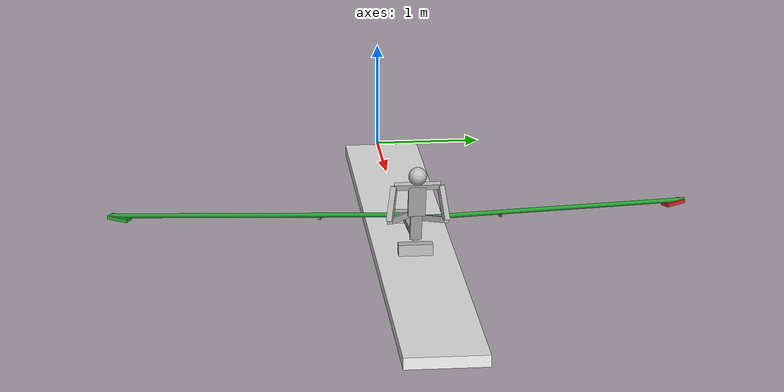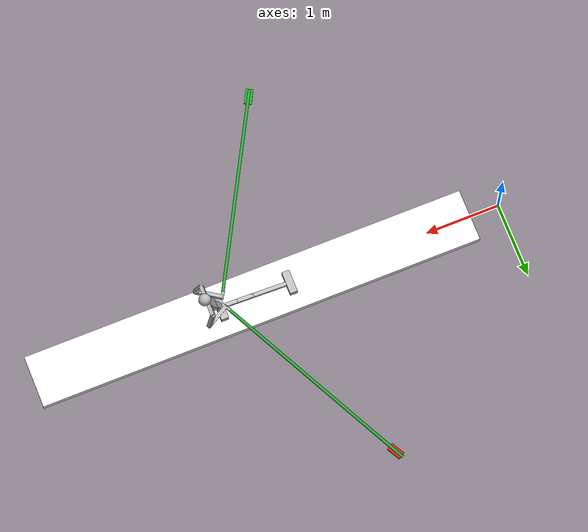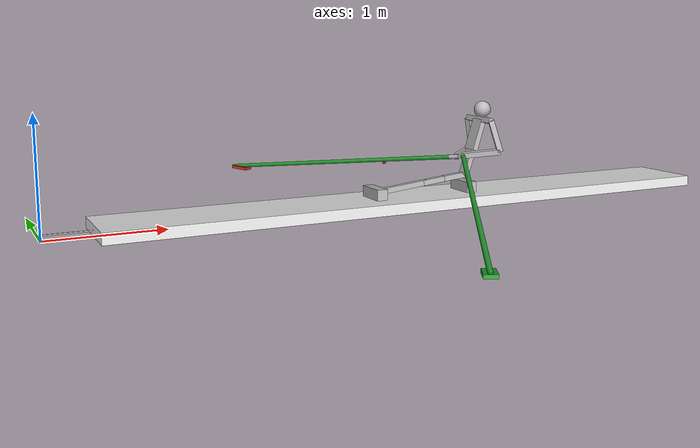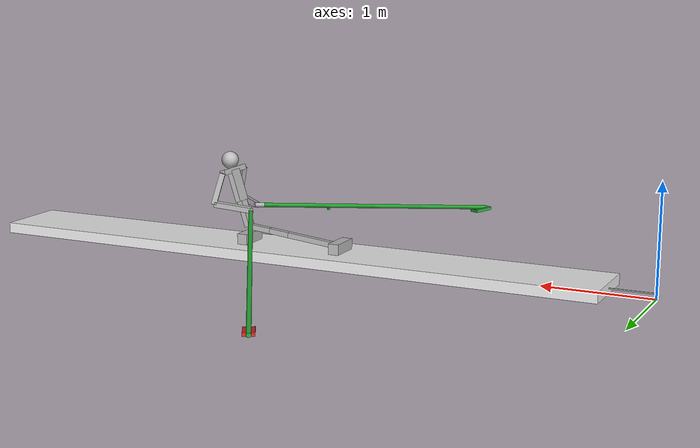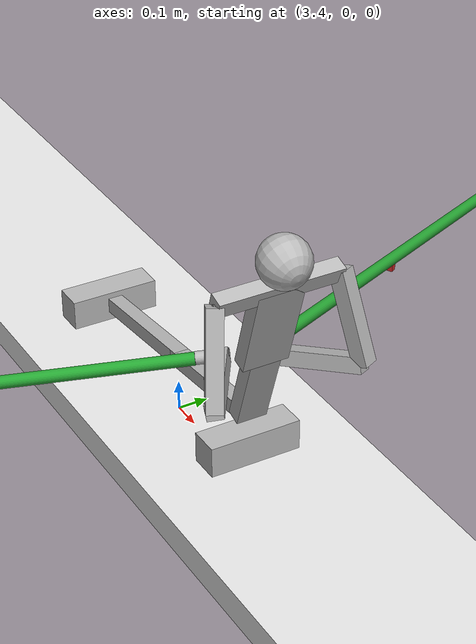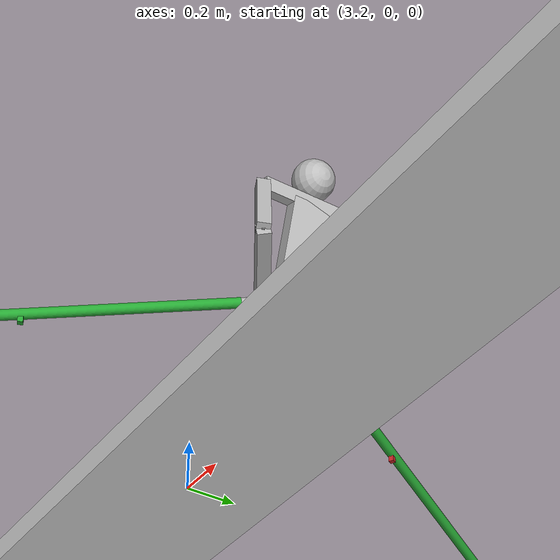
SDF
<sdf version='1.6'>
  <model name='myboat'>
    <link name='l1'>
      <pose frame=''>0 0 0 0 -0 0</pose>
      <inertial>
        <pose frame=''>0 0 0.025 0 -0 0</pose>
        <mass>0.1</mass>
        <inertia>
          <ixx>3.3e-05</ixx>
          <ixy>0</ixy>
          <ixz>0</ixz>
          <iyy>3.3e-05</iyy>
          <iyz>0</iyz>
          <izz>1.67e-07</izz>
        </inertia>
      </inertial>
      <visual name='l1_visual'>
        <pose frame=''>0 0 0.025 0 -0 0</pose>
        <geometry>
          <box>
            <size>0.01 0.01 0.05</size>
          </box>
        </geometry>
      </visual>
    </link>
    <joint name='the_course' type='prismatic'>
      <child>l1</child>
      <parent>world</parent>
      <axis>
        <xyz>1 0 0</xyz>
        <limit>
          <lower>0</lower>
          <upper>100</upper>
          <effort>101</effort>
          <velocity>0.5</velocity>
        </limit>
        <dynamics>
          <damping>0.005</damping>
          <friction>0</friction>
          <spring_reference>0</spring_reference>
          <spring_stiffness>0</spring_stiffness>
        </dynamics>
        <use_parent_model_frame>1</use_parent_model_frame>
      </axis>
    </joint>
    <link name='l2'>
      <pose frame=''>0 0 0.05 3.14159 1.57079 3.14159</pose>
      <inertial>
        <pose frame=''>0 0 0.2 0 -0 0</pose>
        <mass>0.1</mass>
        <inertia>
          <ixx>0.000133</ixx>
          <ixy>0</ixy>
          <ixz>0</ixz>
          <iyy>133</iyy>
          <iyz>0</iyz>
          <izz>1.67e-07</izz>
        </inertia>
      </inertial>
      <visual name='l2_visual'>
        <pose frame=''>0 0 0.2 0 -0 0</pose>
        <geometry>
          <box>
            <size>0.01 0.01 0.4</size>
          </box>
        </geometry>
      </visual>
    </link>
    <joint name='rev1' type='revolute'>
      <child>l2</child>
      <parent>l1</parent>
      <axis>
        <xyz>0 1 0</xyz>
        <limit>
          <lower>-1</lower>
          <upper>1</upper>
          <effort>101</effort>
          <velocity>1</velocity>
        </limit>
        <dynamics>
          <damping>0.005</damping>
          <friction>0</friction>
          <spring_reference>0</spring_reference>
          <spring_stiffness>0</spring_stiffness>
        </dynamics>
        <use_parent_model_frame>1</use_parent_model_frame>
      </axis>
    </joint>
    <link name='skiff'>
      <pose frame=''>0.4 0 0.05 0 0 3.14159</pose>
      <inertial>
        <pose frame=''>-2.99941 0 0.000118 0 -0 0</pose>
        <mass>85.1</mass>
        <inertia>
          <ixx>3.2018</ixx>
          <ixy>0</ixy>
          <ixz>-0.00499412</ixz>
          <iyy>225.026</iyy>
          <iyz>0</iyz>
          <izz>228.026</izz>
        </inertia>
      </inertial>
      <collision name='skiff_collision'>
        <pose frame=''>-3 0 0 0 -0 0</pose>
        <geometry>
          <box>
            <size>6 0.7 0.1</size>
          </box>
        </geometry>
        <surface>
          <friction>
            <ode>
              <slip1>0.05</slip1>
              <slip2>0.12</slip2>
              <mu>0.01</mu>
              <mu2>0.01</mu2>
            </ode>
          </friction>
          <contact>
            <ode/>
          </contact>
        </surface>
      </collision>
      <collision name='skiff_fixed_joint_lump__footplate_collision_1'>
        <pose frame=''>-2.5 0 0.1 0 -0 0</pose>
        <geometry>
          <box>
            <size>0.1 0.3 0.1</size>
          </box>
        </geometry>
      </collision>
      <visual name='skiff_visual'>
        <pose frame=''>-3 0 0 0 -0 0</pose>
        <geometry>
          <box>
            <size>6 0.7 0.1</size>
          </box>
        </geometry>
        <material>
          <script>
            <name>Gazebo/White</name>
            <uri>file://media/materials/scripts/gazebo.material</uri>
          </script>
        </material>
      </visual>
      <visual name='skiff_fixed_joint_lump__footplate_visual_1'>
        <pose frame=''>-2.5 0 0.1 0 -0 0</pose>
        <geometry>
          <box>
            <size>0.1 0.3 0.1</size>
          </box>
        </geometry>
      </visual>
      <gravity>1</gravity>
      <velocity_decay/>
    </link>
    <joint name='rev2' type='revolute'>
      <child>skiff</child>
      <parent>l2</parent>
      <axis>
        <xyz>-0 -1 0</xyz>
        <limit>
          <lower>-1</lower>
          <upper>1</upper>
          <effort>101</effort>
          <velocity>1</velocity>
        </limit>
        <dynamics>
          <damping>0.005</damping>
          <friction>0</friction>
          <spring_reference>0</spring_reference>
          <spring_stiffness>0</spring_stiffness>
        </dynamics>
        <use_parent_model_frame>1</use_parent_model_frame>
      </axis>
    </joint>
    <link name='port_rowlock_l'>
      <pose frame=''>3.4 0.8 0.3 0 0 -2.64769</pose>
      <inertial>
        <pose frame=''>0 0 0 0 -0 0</pose>
        <mass>0.1</mass>
        <inertia>
          <ixx>1.7e-05</ixx>
          <ixy>0</ixy>
          <ixz>0</ixz>
          <iyy>1.7e-05</iyy>
          <iyz>0</iyz>
          <izz>7e-06</izz>
        </inertia>
      </inertial>
      <collision name='port_rowlock_l_collision'>
        <pose frame=''>0 0 0 0 -0 0</pose>
        <geometry>
          <box>
            <size>0.02 0.02 0.04</size>
          </box>
        </geometry>
        <surface>
          <contact>
            <ode/>
          </contact>
          <friction>
            <ode>
              <mu>0.01</mu>
              <mu2>0.01</mu2>
            </ode>
          </friction>
        </surface>
      </collision>
      <visual name='port_rowlock_l_visual'>
        <pose frame=''>0 0 0 0 -0 0</pose>
        <geometry>
          <box>
            <size>0.02 0.02 0.04</size>
          </box>
        </geometry>
        <material>
          <script>
            <name>Gazebo/Red</name>
            <uri>file://media/materials/scripts/gazebo.material</uri>
          </script>
        </material>
      </visual>
      <gravity>1</gravity>
      <velocity_decay/>
    </link>
    <joint name='port_rowlock' type='revolute'>
      <child>port_rowlock_l</child>
      <parent>skiff</parent>
      <axis>
        <xyz>-0 0 1</xyz>
        <limit>
          <lower>-2</lower>
          <upper>0.4</upper>
          <effort>101</effort>
          <velocity>1</velocity>
        </limit>
        <dynamics>
          <damping>0.005</damping>
          <friction>0</friction>
          <spring_reference>0</spring_reference>
          <spring_stiffness>0</spring_stiffness>
        </dynamics>
        <use_parent_model_frame>1</use_parent_model_frame>
      </axis>
      <physics>
        <provide_feedback>1</provide_feedback>
        <ode>
          <provide_feedback>1</provide_feedback>
          <limit>
            <cfm>0</cfm>
            <erp>0.2</erp>
          </limit>
        </ode>
      </physics>
    </joint>
    <link name='port_oar_l'>
      <pose frame=''>3.4 0.8 0.32 -3.14159 1.4549 -1.0769</pose>
      <inertial>
        <pose frame=''>0 0 0.534545 0 -0 0</pose>
        <mass>1.1</mass>
        <inertia>
          <ixx>0.787202</ixx>
          <ixy>0</ixy>
          <ixz>0</ixz>
          <iyy>0.787202</iyy>
          <iyz>0</iyz>
          <izz>0.000200167</izz>
        </inertia>
      </inertial>
      <collision name='port_oar_l_collision'>
        <pose frame=''>0 0 0.665 0 -0 0</pose>
        <geometry>
          <cylinder>
            <length>2.27</length>
            <radius>0.02</radius>
          </cylinder>
        </geometry>
        <surface>
          <contact>
            <ode/>
          </contact>
          <friction>
            <ode>
              <mu>0.01</mu>
              <mu2>0.01</mu2>
            </ode>
          </friction>
        </surface>
      </collision>
      <visual name='port_oar_l_visual'>
        <pose frame=''>0 0 0.665 0 -0 0</pose>
        <geometry>
          <cylinder>
            <length>2.87</length>
            <radius>0.02</radius>
          </cylinder>
        </geometry>
        <material>
          <script>
            <name>Gazebo/Green</name>
            <uri>file://media/materials/scripts/gazebo.material</uri>
          </script>
        </material>
      </visual>
      <visual name='port_oar_l_fixed_joint_lump__Rdummy_link_1_visual_1'>
        <pose frame=''>0 0 -0.77 0 0 -1.5708</pose>
        <geometry>
          <box>
            <size>0.01 0.01 0.01</size>
          </box>
        </geometry>
      </visual>
      <gravity>1</gravity>
      <velocity_decay/>
    </link>
    <joint name='port_oar' type='revolute'>
      <child>port_oar_l</child>
      <parent>port_rowlock_l</parent>
      <axis>
        <xyz>-0.880491 -0.474063 -0</xyz>
        <limit>
          <lower>-0.1</lower>
          <upper>0.4</upper>
          <effort>101</effort>
          <velocity>1</velocity>
        </limit>
        <dynamics>
          <damping>0.005</damping>
          <friction>0</friction>
          <spring_reference>0</spring_reference>
          <spring_stiffness>0</spring_stiffness>
        </dynamics>
        <use_parent_model_frame>1</use_parent_model_frame>
      </axis>
      <physics>
        <provide_feedback>1</provide_feedback>
        <ode>
          <provide_feedback>1</provide_feedback>
          <limit>
            <cfm>0</cfm>
            <erp>0.2</erp>
          </limit>
        </ode>
      </physics>
    </joint>
    <link name='port_blade_l'>
      <pose frame=''>2.45823 2.54917 0.088719 -3.14159 1.4549 -1.0769</pose>
      <inertial>
        <pose frame=''>0.02 0 -0.02 0 1.4 0</pose>
        <mass>1</mass>
        <inertia>
          <ixx>0.0009</ixx>
          <ixy>0</ixy>
          <ixz>0</ixz>
          <iyy>0.0034</iyy>
          <iyz>0</iyz>
          <izz>0.004</izz>
        </inertia>
      </inertial>
      <collision name='port_blade_l_collision'>
        <pose frame=''>0.02 0 -0.02 0 1.4 0</pose>
        <geometry>
          <box>
            <size>0.2 0.1 0.03</size>
          </box>
        </geometry>
        <surface>
          <contact>
            <ode/>
          </contact>
          <friction>
            <ode>
              <mu>10</mu>
              <mu2>10</mu2>
            </ode>
          </friction>
        </surface>
      </collision>
      <visual name='port_blade_l_visual'>
        <pose frame=''>0.02 0 -0.02 0 1.4 0</pose>
        <geometry>
          <box>
            <size>0.2 0.1 0.03</size>
          </box>
        </geometry>
        <material>
          <script>
            <name>Gazebo/Red</name>
            <uri>file://media/materials/scripts/gazebo.material</uri>
          </script>
        </material>
      </visual>
      <gravity>1</gravity>
      <velocity_decay/>
    </link>
    <joint name='port_blade' type='revolute'>
      <child>port_blade_l</child>
      <parent>port_oar_l</parent>
      <axis>
        <xyz>-0.880491 -0.474063 -0</xyz>
        <limit>
          <lower>-0.4</lower>
          <upper>0.4</upper>
          <effort>101</effort>
          <velocity>1</velocity>
        </limit>
        <dynamics>
          <damping>0.005</damping>
          <friction>0</friction>
          <spring_reference>0</spring_reference>
          <spring_stiffness>0</spring_stiffness>
        </dynamics>
        <use_parent_model_frame>1</use_parent_model_frame>
      </axis>
      <physics>
        <provide_feedback>1</provide_feedback>
        <ode>
          <provide_feedback>1</provide_feedback>
          <limit>
            <cfm>0</cfm>
            <erp>0.2</erp>
          </limit>
        </ode>
      </physics>
    </joint>
    <link name='lowerleg'>
      <pose frame=''>2.9 0 0.15 0 0.1071 -3.14159</pose>
      <inertial>
        <pose frame=''>-0.265 0 0 0 -0 0</pose>
        <mass>1</mass>
        <inertia>
          <ixx>0.00041</ixx>
          <ixy>0</ixy>
          <ixz>0</ixz>
          <iyy>0.021</iyy>
          <iyz>0</iyz>
          <izz>0.021</izz>
        </inertia>
      </inertial>
      <collision name='lowerleg_collision'>
        <pose frame=''>-0.265 0 0 0 -0 0</pose>
        <geometry>
          <box>
            <size>0.53 0.05 0.05</size>
          </box>
        </geometry>
      </collision>
      <visual name='lowerleg_visual'>
        <pose frame=''>-0.265 0 0 0 -0 0</pose>
        <geometry>
          <box>
            <size>0.53 0.05 0.05</size>
          </box>
        </geometry>
      </visual>
    </link>
    <joint name='fp_ll' type='revolute'>
      <child>lowerleg</child>
      <parent>skiff</parent>
      <axis>
        <xyz>-0 -1 0</xyz>
        <limit>
          <lower>0</lower>
          <upper>1.5708</upper>
          <effort>101</effort>
          <velocity>1</velocity>
        </limit>
        <dynamics>
          <damping>0.005</damping>
          <friction>0</friction>
          <spring_reference>0</spring_reference>
          <spring_stiffness>0</spring_stiffness>
        </dynamics>
        <use_parent_model_frame>1</use_parent_model_frame>
      </axis>
    </joint>
    <link name='upperleg_1'>
      <pose frame=''>3.39714 0 0.203448 0 0.1071 -3.14159</pose>
      <inertial>
        <pose frame=''>-0.1125 0 0 0 -0 0</pose>
        <mass>1</mass>
        <inertia>
          <ixx>0.00041</ixx>
          <ixy>0</ixy>
          <ixz>0</ixz>
          <iyy>0.0054</iyy>
          <iyz>0</iyz>
          <izz>0.0054</izz>
        </inertia>
      </inertial>
      <collision name='upperleg_1_collision'>
        <pose frame=''>-0.1125 0 0 0 -0 0</pose>
        <geometry>
          <box>
            <size>0.225 0.05 0.05</size>
          </box>
        </geometry>
      </collision>
      <visual name='upperleg_1_visual'>
        <pose frame=''>-0.1125 0 0 0 -0 0</pose>
        <geometry>
          <box>
            <size>0.225 0.05 0.05</size>
          </box>
        </geometry>
      </visual>
    </link>
    <joint name='knee' type='revolute'>
      <child>upperleg_1</child>
      <parent>lowerleg</parent>
      <axis>
        <xyz>-0 -1 0</xyz>
        <limit>
          <lower>-3.1</lower>
          <upper>0</upper>
          <effort>1000</effort>
          <velocity>1</velocity>
        </limit>
        <dynamics>
          <damping>0.005</damping>
          <friction>0</friction>
          <spring_reference>0</spring_reference>
          <spring_stiffness>0</spring_stiffness>
        </dynamics>
        <use_parent_model_frame>1</use_parent_model_frame>
      </axis>
    </joint>
    <link name='seat'>
      <pose frame=''>3.84455 0 0.15 0 0 3.14159</pose>
      <inertial>
        <pose frame=''>0 0 0 0 -0 0</pose>
        <mass>0.1</mass>
        <inertia>
          <ixx>0.001</ixx>
          <ixy>0</ixy>
          <ixz>0</ixz>
          <iyy>0.0005</iyy>
          <iyz>0</iyz>
          <izz>0.001</izz>
        </inertia>
      </inertial>
      <collision name='seat_collision'>
        <pose frame=''>0 0 0 0 -0 0</pose>
        <geometry>
          <box>
            <size>0.1 0.3 0.1</size>
          </box>
        </geometry>
      </collision>
      <visual name='seat_visual'>
        <pose frame=''>0 0 0 0 -0 0</pose>
        <geometry>
          <box>
            <size>0.1 0.3 0.1</size>
          </box>
        </geometry>
      </visual>
    </link>
    <joint name='sliding' type='prismatic'>
      <child>seat</child>
      <parent>skiff</parent>
      <axis>
        <xyz>-1 0 -0</xyz>
        <limit>
          <lower>-0.1</lower>
          <upper>0.8</upper>
          <effort>101</effort>
          <velocity>0.5</velocity>
        </limit>
        <dynamics>
          <damping>0.005</damping>
          <friction>0</friction>
          <spring_reference>0</spring_reference>
          <spring_stiffness>0</spring_stiffness>
        </dynamics>
        <use_parent_model_frame>1</use_parent_model_frame>
      </axis>
    </joint>
    <link name='upperleg_2'>
      <pose frame=''>3.84455 0 0.25 0 0.100168 -3.14159</pose>
      <inertial>
        <pose frame=''>0.1125 0 0 0 -0 0</pose>
        <mass>1</mass>
        <inertia>
          <ixx>0.00041</ixx>
          <ixy>0</ixy>
          <ixz>0</ixz>
          <iyy>0.0054</iyy>
          <iyz>0</iyz>
          <izz>0.0054</izz>
        </inertia>
      </inertial>
      <collision name='upperleg_2_collision'>
        <pose frame=''>0.1125 0 0 0 -0 0</pose>
        <geometry>
          <box>
            <size>0.225 0.05 0.05</size>
          </box>
        </geometry>
      </collision>
      <visual name='upperleg_2_visual'>
        <pose frame=''>0.1125 0 0 0 -0 0</pose>
        <geometry>
          <box>
            <size>0.225 0.05 0.05</size>
          </box>
        </geometry>
      </visual>
    </link>
    <joint name='hip1' type='revolute'>
      <child>upperleg_2</child>
      <parent>seat</parent>
      <axis>
        <xyz>-0 -1 0</xyz>
        <limit>
          <lower>-1.6</lower>
          <upper>0</upper>
          <effort>101</effort>
          <velocity>1</velocity>
        </limit>
        <dynamics>
          <damping>0.005</damping>
          <friction>0</friction>
          <spring_reference>0</spring_reference>
          <spring_stiffness>0</spring_stiffness>
        </dynamics>
        <use_parent_model_frame>1</use_parent_model_frame>
      </axis>
    </joint>
    <link name='back_low'>
      <pose frame=''>3.84455 0 0.25 3.14159 -1.2418 0</pose>
      <inertial>
        <pose frame=''>0.125 0 0 0 -0 0</pose>
        <mass>10</mass>
        <inertia>
          <ixx>0.01</ixx>
          <ixy>0</ixy>
          <ixz>0</ixz>
          <iyy>0.054</iyy>
          <iyz>0</iyz>
          <izz>0.06</izz>
        </inertia>
      </inertial>
      <collision name='back_low_collision'>
        <pose frame=''>0.125 0 0 0 -0 0</pose>
        <geometry>
          <box>
            <size>0.25 0.1 0.05</size>
          </box>
        </geometry>
      </collision>
      <visual name='back_low_visual'>
        <pose frame=''>0.125 0 0 0 -0 0</pose>
        <geometry>
          <box>
            <size>0.25 0.1 0.05</size>
          </box>
        </geometry>
      </visual>
    </link>
    <joint name='hip2' type='revolute'>
      <child>back_low</child>
      <parent>seat</parent>
      <axis>
        <xyz>-0 -1 0</xyz>
        <limit>
          <lower>-1</lower>
          <upper>1</upper>
          <effort>1000</effort>
          <velocity>1</velocity>
        </limit>
        <dynamics>
          <damping>0.005</damping>
          <friction>0</friction>
          <spring_reference>0</spring_reference>
          <spring_stiffness>0</spring_stiffness>
        </dynamics>
        <use_parent_model_frame>1</use_parent_model_frame>
      </axis>
    </joint>
    <link name='back_high'>
      <pose frame=''>3.92532 0 0.486591 3.14159 -1.26 0</pose>
      <inertial>
        <pose frame=''>0.2375 0 0 0 -0 0</pose>
        <mass>16</mass>
        <inertia>
          <ixx>0.0458</ixx>
          <ixy>0</ixy>
          <ixz>0</ixz>
          <iyy>0.3027</iyy>
          <iyz>0</iyz>
          <izz>0.3323</izz>
        </inertia>
      </inertial>
      <collision name='back_high_collision'>
        <pose frame=''>0.15 0 0 0 -0 0</pose>
        <geometry>
          <box>
            <size>0.3 0.15 0.05</size>
          </box>
        </geometry>
      </collision>
      <collision name='back_high_fixed_joint_lump__shoulder_link_collision_1'>
        <pose frame=''>0.3 0 0 0 -0 0</pose>
        <geometry>
          <box>
            <size>0.05 0.4 0.05</size>
          </box>
        </geometry>
      </collision>
      <collision name='back_high_fixed_joint_lump__head_collision_2'>
        <pose frame=''>0.4 0 0 0 -0 0</pose>
        <geometry>
          <sphere>
            <radius>0.08</radius>
          </sphere>
        </geometry>
      </collision>
      <visual name='back_high_visual'>
        <pose frame=''>0.15 0 0 0 -0 0</pose>
        <geometry>
          <box>
            <size>0.3 0.15 0.05</size>
          </box>
        </geometry>
      </visual>
      <visual name='back_high_fixed_joint_lump__shoulder_link_visual_1'>
        <pose frame=''>0.3 0 0 0 -0 0</pose>
        <geometry>
          <box>
            <size>0.05 0.4 0.05</size>
          </box>
        </geometry>
      </visual>
      <visual name='back_high_fixed_joint_lump__head_visual_2'>
        <pose frame=''>0.4 0 0 0 -0 0</pose>
        <geometry>
          <sphere>
            <radius>0.08</radius>
          </sphere>
        </geometry>
      </visual>
    </link>
    <joint name='back_lh' type='revolute'>
      <child>back_high</child>
      <parent>back_low</parent>
      <axis>
        <xyz>-0 -1 0</xyz>
        <limit>
          <lower>0</lower>
          <upper>0.5</upper>
          <effort>101</effort>
          <velocity>1</velocity>
        </limit>
        <dynamics>
          <damping>0.005</damping>
          <friction>0</friction>
          <spring_reference>0</spring_reference>
          <spring_stiffness>0</spring_stiffness>
        </dynamics>
        <use_parent_model_frame>1</use_parent_model_frame>
      </axis>
    </joint>
    <link name='left_shoulder_xx_link'>
      <pose frame=''>4.01707 -0.2 0.772218 0 -1.3142 3.14159</pose>
      <inertial>
        <pose frame=''>0 0 0 0 -0 0</pose>
        <mass>1</mass>
        <inertia>
          <ixx>1.67e-05</ixx>
          <ixy>0</ixy>
          <ixz>0</ixz>
          <iyy>1.67e-05</iyy>
          <iyz>0</iyz>
          <izz>1.67e-05</izz>
        </inertia>
      </inertial>
      <visual name='left_shoulder_xx_link_visual'>
        <pose frame=''>0 0 0 0 -0 0</pose>
        <geometry>
          <box>
            <size>0.01 0.01 0.01</size>
          </box>
        </geometry>
      </visual>
    </link>
    <joint name='shoulder_l' type='revolute'>
      <child>left_shoulder_xx_link</child>
      <parent>back_high</parent>
      <axis>
        <xyz>0 1 -0</xyz>
        <limit>
          <lower>-1</lower>
          <upper>2.2</upper>
          <effort>101</effort>
          <velocity>1</velocity>
        </limit>
        <dynamics>
          <damping>0.005</damping>
          <friction>0</friction>
          <spring_reference>0</spring_reference>
          <spring_stiffness>0</spring_stiffness>
        </dynamics>
        <use_parent_model_frame>1</use_parent_model_frame>
      </axis>
    </joint>
    <link name='left_shoulder_psi_link'>
      <pose frame=''>4.01707 -0.2 0.772218 0.530708 -1.2721 2.5909</pose>
      <inertial>
        <pose frame=''>0 0 0 0 -0 0</pose>
        <mass>1</mass>
        <inertia>
          <ixx>1.67e-05</ixx>
          <ixy>0</ixy>
          <ixz>0</ixz>
          <iyy>0.000167</iyy>
          <iyz>0</iyz>
          <izz>1.67e-05</izz>
        </inertia>
      </inertial>
      <visual name='left_shoulder_psi_link_visual'>
        <pose frame=''>0 0 0 0 -0 0</pose>
        <geometry>
          <box>
            <size>0.01 0.01 0.01</size>
          </box>
        </geometry>
      </visual>
    </link>
    <joint name='shoulder_psi_l' type='revolute'>
      <child>left_shoulder_psi_link</child>
      <parent>left_shoulder_xx_link</parent>
      <axis>
        <xyz>-0.967258 -0 -0.253793</xyz>
        <limit>
          <lower>-1</lower>
          <upper>1</upper>
          <effort>101</effort>
          <velocity>1</velocity>
        </limit>
        <dynamics>
          <damping>0.005</damping>
          <friction>0</friction>
          <spring_reference>0</spring_reference>
          <spring_stiffness>0</spring_stiffness>
        </dynamics>
        <use_parent_model_frame>1</use_parent_model_frame>
      </axis>
    </joint>
    <link name='arm_l_upper'>
      <pose frame=''>4.01707 -0.2 0.772218 0.146008 -1.2721 2.5909</pose>
      <inertial>
        <pose frame=''>-0.15 0 0 0 -0 0</pose>
        <mass>1</mass>
        <inertia>
          <ixx>0.00041</ixx>
          <ixy>0</ixy>
          <ixz>0</ixz>
          <iyy>0.01</iyy>
          <iyz>0</iyz>
          <izz>0.01</izz>
        </inertia>
      </inertial>
      <collision name='arm_l_upper_collision'>
        <pose frame=''>-0.15 0 0 0 -0 0</pose>
        <geometry>
          <box>
            <size>0.3 0.05 0.05</size>
          </box>
        </geometry>
      </collision>
      <visual name='arm_l_upper_visual'>
        <pose frame=''>-0.15 0 0 0 -0 0</pose>
        <geometry>
          <box>
            <size>0.3 0.05 0.05</size>
          </box>
        </geometry>
      </visual>
    </link>
    <joint name='shoulder_theta_l' type='revolute'>
      <child>arm_l_upper</child>
      <parent>left_shoulder_psi_link</parent>
      <axis>
        <xyz>-0.250766 0.153985 0.955722</xyz>
        <limit>
          <lower>-1</lower>
          <upper>1</upper>
          <effort>101</effort>
          <velocity>1</velocity>
        </limit>
        <dynamics>
          <damping>0.005</damping>
          <friction>0</friction>
          <spring_reference>0</spring_reference>
          <spring_stiffness>0</spring_stiffness>
        </dynamics>
        <use_parent_model_frame>1</use_parent_model_frame>
      </axis>
    </joint>
    <link name='left_elbow_theta_link'>
      <pose frame=''>4.0923 -0.246195 0.485502 -0.043077 -0.107798 -0.406426</pose>
      <inertial>
        <pose frame=''>0 0 0 0 -0 0</pose>
        <mass>1</mass>
        <inertia>
          <ixx>1.67e-05</ixx>
          <ixy>0</ixy>
          <ixz>0</ixz>
          <iyy>1.67e-05</iyy>
          <iyz>0</iyz>
          <izz>1.67e-05</izz>
        </inertia>
      </inertial>
      <visual name='left_elbow_theta_link_visual'>
        <pose frame=''>0 0 0 0 -0 0</pose>
        <geometry>
          <box>
            <size>0.01 0.01 0.01</size>
          </box>
        </geometry>
      </visual>
    </link>
    <joint name='elbow_xx_l' type='revolute'>
      <child>left_elbow_theta_link</child>
      <parent>arm_l_upper</parent>
      <axis>
        <xyz>0.399218 0.915856 -0.042813</xyz>
        <limit>
          <lower>-1.7708</lower>
          <upper>1.5708</upper>
          <effort>101</effort>
          <velocity>1</velocity>
        </limit>
        <dynamics>
          <damping>0.005</damping>
          <friction>0</friction>
          <spring_reference>0</spring_reference>
          <spring_stiffness>0</spring_stiffness>
        </dynamics>
        <use_parent_model_frame>1</use_parent_model_frame>
      </axis>
    </joint>
    <link name='left_elbow_psi_link'>
      <pose frame=''>4.0923 -0.246195 0.485502 -0.026267 -0.113056 -0.558664</pose>
      <inertial>
        <pose frame=''>0 0 0 0 -0 0</pose>
        <mass>1</mass>
        <inertia>
          <ixx>1.67e-05</ixx>
          <ixy>0</ixy>
          <ixz>0</ixz>
          <iyy>1.67e-05</iyy>
          <iyz>0</iyz>
          <izz>1.67e-05</izz>
        </inertia>
      </inertial>
      <visual name='left_elbow_psi_link_visual'>
        <pose frame=''>0 0 0 0 -0 0</pose>
        <geometry>
          <box>
            <size>0.01 0.01 0.01</size>
          </box>
        </geometry>
      </visual>
    </link>
    <joint name='elbow_theta_l' type='revolute'>
      <child>left_elbow_psi_link</child>
      <parent>left_elbow_theta_link</parent>
      <axis>
        <xyz>0.081709 -0.082049 -0.993273</xyz>
        <limit>
          <lower>-0.7</lower>
          <upper>2</upper>
          <effort>101</effort>
          <velocity>1</velocity>
        </limit>
        <dynamics>
          <damping>0.005</damping>
          <friction>0</friction>
          <spring_reference>0</spring_reference>
          <spring_stiffness>0</spring_stiffness>
        </dynamics>
        <use_parent_model_frame>1</use_parent_model_frame>
      </axis>
    </joint>
    <link name='arm_l_lower'>
      <pose frame=''>4.0923 -0.246195 0.485502 0.187633 -0.113056 -0.558664</pose>
      <inertial>
        <pose frame=''>-0.175 0 0 0 -0 0</pose>
        <mass>1</mass>
        <inertia>
          <ixx>0.00041</ixx>
          <ixy>0</ixy>
          <ixz>0</ixz>
          <iyy>0.0135</iyy>
          <iyz>0</iyz>
          <izz>0.0135</izz>
        </inertia>
      </inertial>
      <collision name='arm_l_lower_collision'>
        <pose frame=''>-0.175 0 0 0 -0 0</pose>
        <geometry>
          <box>
            <size>0.35 0.05 0.05</size>
          </box>
        </geometry>
      </collision>
      <visual name='arm_l_lower_visual'>
        <pose frame=''>-0.175 0 0 0 -0 0</pose>
        <geometry>
          <box>
            <size>0.35 0.05 0.05</size>
          </box>
        </geometry>
      </visual>
    </link>
    <joint name='elbow_left' type='revolute'>
      <child>arm_l_lower</child>
      <parent>left_elbow_psi_link</parent>
      <axis>
        <xyz>0.842551 -0.52667 0.112815</xyz>
        <limit>
          <lower>-1</lower>
          <upper>1</upper>
          <effort>101</effort>
          <velocity>1</velocity>
        </limit>
        <dynamics>
          <damping>0.005</damping>
          <friction>0</friction>
          <spring_reference>0</spring_reference>
          <spring_stiffness>0</spring_stiffness>
        </dynamics>
        <use_parent_model_frame>1</use_parent_model_frame>
      </axis>
    </joint>
    <link name='handle_left_l2'>
      <pose frame=''>3.79741 -0.061861 0.446016 1.75733 -0.033959 -0.543655</pose>
      <inertial>
        <pose frame=''>0 0 0 0 -0 0</pose>
        <mass>0.1</mass>
        <inertia>
          <ixx>1.67e-06</ixx>
          <ixy>0</ixy>
          <ixz>0</ixz>
          <iyy>1.67e-06</iyy>
          <iyz>0</iyz>
          <izz>1.67e-06</izz>
        </inertia>
      </inertial>
      <visual name='handle_left_l2_visual'>
        <pose frame=''>0 0 0 0 -0 0</pose>
        <geometry>
          <box>
            <size>0.01 0.01 0.01</size>
          </box>
        </geometry>
      </visual>
    </link>
    <joint name='handle_left_j3' type='revolute'>
      <child>handle_left_l2</child>
      <parent>arm_l_lower</parent>
      <axis>
        <xyz>-0.124481 -0.141454 0.982087</xyz>
        <limit>
          <lower>-1</lower>
          <upper>1</upper>
          <effort>101</effort>
          <velocity>1</velocity>
        </limit>
        <dynamics>
          <damping>0.005</damping>
          <friction>0</friction>
          <spring_reference>0</spring_reference>
          <spring_stiffness>0</spring_stiffness>
        </dynamics>
        <use_parent_model_frame>1</use_parent_model_frame>
      </axis>
    </joint>
    <link name='handle_left_l1'>
      <pose frame=''>3.79741 -0.061861 0.446016 1.70073 -0.033959 -0.543655</pose>
      <inertial>
        <pose frame=''>0 0 0 0 -0 0</pose>
        <mass>0.1</mass>
        <inertia>
          <ixx>1.67e-06</ixx>
          <ixy>0</ixy>
          <ixz>0</ixz>
          <iyy>1.67e-06</iyy>
          <iyz>0</iyz>
          <izz>1.67e-06</izz>
        </inertia>
      </inertial>
      <visual name='handle_left_l1_visual'>
        <pose frame=''>0 0 0 0 -0 0</pose>
        <geometry>
          <box>
            <size>0.01 0.01 0.01</size>
          </box>
        </geometry>
      </visual>
    </link>
    <joint name='handle_left_j2' type='revolute'>
      <child>handle_left_l1</child>
      <parent>handle_left_l2</parent>
      <axis>
        <xyz>0.855331 -0.516969 0.033953</xyz>
        <limit>
          <lower>-1</lower>
          <upper>1</upper>
          <effort>101</effort>
          <velocity>1</velocity>
        </limit>
        <dynamics>
          <damping>0.005</damping>
          <friction>0</friction>
          <spring_reference>0</spring_reference>
          <spring_stiffness>0</spring_stiffness>
        </dynamics>
        <use_parent_model_frame>1</use_parent_model_frame>
      </axis>
    </joint>
    <link name='starboard_handle_l'>
      <pose frame=''>3.79741 -0.061861 0.446016 1.70085 0.055778 -0.531927</pose>
      <inertial>
        <pose frame=''>0 0 0.029546 0 -0 0</pose>
        <mass>1.1</mass>
        <inertia>
          <ixx>0.600227</ixx>
          <ixy>0</ixy>
          <ixz>0</ixz>
          <iyy>0.600227</iyy>
          <iyz>0</iyz>
          <izz>0.000200167</izz>
        </inertia>
      </inertial>
      <visual name='starboard_handle_l_visual'>
        <pose frame=''>0 0 0.025 0 -0 0</pose>
        <geometry>
          <cylinder>
            <length>0.1</length>
            <radius>0.02</radius>
          </cylinder>
        </geometry>
      </visual>
      <visual name='starboard_handle_l_fixed_joint_lump__Ldummy_link_2_visual_1'>
        <pose frame=''>0 0 0.075 0 -0 0</pose>
        <geometry>
          <box>
            <size>0.01 0.01 0.01</size>
          </box>
        </geometry>
      </visual>
    </link>
    <joint name='handle_left_j1' type='revolute'>
      <child>starboard_handle_l</child>
      <parent>handle_left_l1</parent>
      <axis>
        <xyz>-0.509142 -0.850886 -0.129489</xyz>
        <limit>
          <lower>-1</lower>
          <upper>1</upper>
          <effort>101</effort>
          <velocity>1</velocity>
        </limit>
        <dynamics>
          <damping>0.005</damping>
          <friction>0</friction>
          <spring_reference>0</spring_reference>
          <spring_stiffness>0</spring_stiffness>
        </dynamics>
        <use_parent_model_frame>1</use_parent_model_frame>
      </axis>
    </joint>
    <link name='right_shoulder_xx_link'>
      <pose frame=''>4.01707 0.2 0.772218 0 -1.3243 3.14159</pose>
      <inertial>
        <pose frame=''>0 0 0 0 -0 0</pose>
        <mass>1</mass>
        <inertia>
          <ixx>1.67e-05</ixx>
          <ixy>0</ixy>
          <ixz>0</ixz>
          <iyy>1.67e-05</iyy>
          <iyz>0</iyz>
          <izz>1.67e-05</izz>
        </inertia>
      </inertial>
      <visual name='right_shoulder_xx_link_visual'>
        <pose frame=''>0 0 0 0 -0 0</pose>
        <geometry>
          <box>
            <size>0.01 0.01 0.01</size>
          </box>
        </geometry>
      </visual>
    </link>
    <joint name='shoulder_r' type='revolute'>
      <child>right_shoulder_xx_link</child>
      <parent>back_high</parent>
      <axis>
        <xyz>0 1 -0</xyz>
        <limit>
          <lower>-1</lower>
          <upper>2.2</upper>
          <effort>101</effort>
          <velocity>1</velocity>
        </limit>
        <dynamics>
          <damping>0.005</damping>
          <friction>0</friction>
          <spring_reference>0</spring_reference>
          <spring_stiffness>0</spring_stiffness>
        </dynamics>
        <use_parent_model_frame>1</use_parent_model_frame>
      </axis>
    </joint>
    <link name='right_shoulder_psi_link'>
      <pose frame=''>4.01707 0.2 0.772218 -0.515041 -1.2866 -2.60882</pose>
      <inertial>
        <pose frame=''>0 0 0 0 -0 0</pose>
        <mass>1</mass>
        <inertia>
          <ixx>1.67e-05</ixx>
          <ixy>0</ixy>
          <ixz>0</ixz>
          <iyy>1.67e-05</iyy>
          <iyz>0</iyz>
          <izz>1.67e-05</izz>
        </inertia>
      </inertial>
      <visual name='right_shoulder_psi_link_visual'>
        <pose frame=''>0 0 0 0 -0 0</pose>
        <geometry>
          <box>
            <size>0.01 0.01 0.01</size>
          </box>
        </geometry>
      </visual>
    </link>
    <joint name='shoulder_psi_r' type='revolute'>
      <child>right_shoulder_psi_link</child>
      <parent>right_shoulder_xx_link</parent>
      <axis>
        <xyz>0.969772 0 0.244011</xyz>
        <limit>
          <lower>-1</lower>
          <upper>1</upper>
          <effort>101</effort>
          <velocity>1</velocity>
        </limit>
        <dynamics>
          <damping>0.005</damping>
          <friction>0</friction>
          <spring_reference>0</spring_reference>
          <spring_stiffness>0</spring_stiffness>
        </dynamics>
        <use_parent_model_frame>1</use_parent_model_frame>
      </axis>
    </joint>
    <link name='arm_r_upper'>
      <pose frame=''>4.01707 0.2 0.772218 3.01495 -1.2866 -2.60882</pose>
      <inertial>
        <pose frame=''>-0.15 0 0 0 -0 0</pose>
        <mass>1</mass>
        <inertia>
          <ixx>0.0004</ixx>
          <ixy>0</ixy>
          <ixz>0</ixz>
          <iyy>0.01</iyy>
          <iyz>0</iyz>
          <izz>0.01</izz>
        </inertia>
      </inertial>
      <collision name='arm_r_upper_collision'>
        <pose frame=''>-0.15 0 0 0 -0 0</pose>
        <geometry>
          <box>
            <size>0.3 0.05 0.05</size>
          </box>
        </geometry>
      </collision>
      <visual name='arm_r_upper_visual'>
        <pose frame=''>-0.15 0 0 0 -0 0</pose>
        <geometry>
          <box>
            <size>0.3 0.05 0.05</size>
          </box>
        </geometry>
      </visual>
    </link>
    <joint name='shoulder_theta_r' type='revolute'>
      <child>arm_r_upper</child>
      <parent>right_shoulder_psi_link</parent>
      <axis>
        <xyz>0.241524 0.142414 -0.959888</xyz>
        <limit>
          <lower>-1</lower>
          <upper>1</upper>
          <effort>101</effort>
          <velocity>1</velocity>
        </limit>
        <dynamics>
          <damping>0.005</damping>
          <friction>0</friction>
          <spring_reference>0</spring_reference>
          <spring_stiffness>0</spring_stiffness>
        </dynamics>
        <use_parent_model_frame>1</use_parent_model_frame>
      </axis>
    </joint>
    <link name='right_elbow_theta_link'>
      <pose frame=''>4.08953 0.242724 0.484252 0.036057 -0.188019 0.404419</pose>
      <inertial>
        <pose frame=''>0 0 0 0 -0 0</pose>
        <mass>1</mass>
        <inertia>
          <ixx>1.67e-05</ixx>
          <ixy>0</ixy>
          <ixz>0</ixz>
          <iyy>1.67e-05</iyy>
          <iyz>0</iyz>
          <izz>1.67e-05</izz>
        </inertia>
      </inertial>
      <visual name='right_elbow_theta_link_visual'>
        <pose frame=''>0 0 0 0 -0 0</pose>
        <geometry>
          <box>
            <size>0.01 0.01 0.01</size>
          </box>
        </geometry>
      </visual>
    </link>
    <joint name='elbow_xx_r' type='revolute'>
      <child>right_elbow_theta_link</child>
      <parent>arm_r_upper</parent>
      <axis>
        <xyz>-0.399423 0.916083 0.035413</xyz>
        <limit>
          <lower>-1.7708</lower>
          <upper>1.5708</upper>
          <effort>101</effort>
          <velocity>1</velocity>
        </limit>
        <dynamics>
          <damping>0.005</damping>
          <friction>0</friction>
          <spring_reference>0</spring_reference>
          <spring_stiffness>0</spring_stiffness>
        </dynamics>
        <use_parent_model_frame>1</use_parent_model_frame>
      </axis>
    </joint>
    <link name='right_elbow_psi_link'>
      <pose frame=''>4.08953 0.242724 0.484252 0.007177 -0.191272 0.55733</pose>
      <inertial>
        <pose frame=''>0 0 0 0 -0 0</pose>
        <mass>1</mass>
        <inertia>
          <ixx>1.67e-05</ixx>
          <ixy>0</ixy>
          <ixz>0</ixz>
          <iyy>1.67e-05</iyy>
          <iyz>0</iyz>
          <izz>1.67e-05</izz>
        </inertia>
      </inertial>
      <visual name='right_elbow_psi_link_visual'>
        <pose frame=''>0 0 0 0 -0 0</pose>
        <geometry>
          <box>
            <size>0.01 0.01 0.01</size>
          </box>
        </geometry>
      </visual>
    </link>
    <joint name='elbow_theta_r' type='revolute'>
      <child>right_elbow_psi_link</child>
      <parent>right_elbow_theta_link</parent>
      <axis>
        <xyz>-0.157539 -0.10664 0.981738</xyz>
        <limit>
          <lower>-2</lower>
          <upper>1</upper>
          <effort>101</effort>
          <velocity>1</velocity>
        </limit>
        <dynamics>
          <damping>0.005</damping>
          <friction>0</friction>
          <spring_reference>0</spring_reference>
          <spring_stiffness>0</spring_stiffness>
        </dynamics>
        <use_parent_model_frame>1</use_parent_model_frame>
      </axis>
    </joint>
    <link name='arm_r_lower'>
      <pose frame=''>4.08953 0.242724 0.484252 -0.159023 -0.191272 0.55733</pose>
      <inertial>
        <pose frame=''>-0.175 0 0 0 -0 0</pose>
        <mass>1</mass>
        <inertia>
          <ixx>0.0004</ixx>
          <ixy>0</ixy>
          <ixz>0</ixz>
          <iyy>0.0035</iyy>
          <iyz>0</iyz>
          <izz>0.0035</izz>
        </inertia>
      </inertial>
      <collision name='arm_r_lower_collision'>
        <pose frame=''>-0.175 0 0 0 -0 0</pose>
        <geometry>
          <box>
            <size>0.35 0.05 0.05</size>
          </box>
        </geometry>
      </collision>
      <visual name='arm_r_lower_visual'>
        <pose frame=''>-0.175 0 0 0 -0 0</pose>
        <geometry>
          <box>
            <size>0.35 0.05 0.05</size>
          </box>
        </geometry>
      </visual>
    </link>
    <joint name='elbow_right' type='revolute'>
      <child>arm_r_lower</child>
      <parent>right_elbow_psi_link</parent>
      <axis>
        <xyz>-0.833193 -0.519276 -0.190108</xyz>
        <limit>
          <lower>-1</lower>
          <upper>1</upper>
          <effort>101</effort>
          <velocity>1</velocity>
        </limit>
        <dynamics>
          <damping>0.005</damping>
          <friction>0</friction>
          <spring_reference>0</spring_reference>
          <spring_stiffness>0</spring_stiffness>
        </dynamics>
        <use_parent_model_frame>1</use_parent_model_frame>
      </axis>
    </joint>
    <link name='handle_right_l2'>
      <pose frame=''>3.79791 0.060978 0.417714 1.4103 -0.233626 0.564311</pose>
      <inertial>
        <pose frame=''>0 0 0 0 -0 0</pose>
        <mass>0.1</mass>
        <inertia>
          <ixx>1.67e-06</ixx>
          <ixy>0</ixy>
          <ixz>0</ixz>
          <iyy>1.67e-06</iyy>
          <iyz>0</iyz>
          <izz>1.67e-06</izz>
        </inertia>
      </inertial>
      <visual name='handle_right_l2_visual'>
        <pose frame=''>0 0 0 0 -0 0</pose>
        <geometry>
          <box>
            <size>0.01 0.01 0.01</size>
          </box>
        </geometry>
      </visual>
    </link>
    <joint name='handle_right_j3' type='revolute'>
      <child>handle_right_l2</child>
      <parent>arm_r_lower</parent>
      <axis>
        <xyz>0.278569 -0.012804 -0.960331</xyz>
        <limit>
          <lower>-1</lower>
          <upper>1</upper>
          <effort>101</effort>
          <velocity>1</velocity>
        </limit>
        <dynamics>
          <damping>0.005</damping>
          <friction>0</friction>
          <spring_reference>0</spring_reference>
          <spring_stiffness>0</spring_stiffness>
        </dynamics>
        <use_parent_model_frame>1</use_parent_model_frame>
      </axis>
    </joint>
    <link name='handle_right_l1'>
      <pose frame=''>3.79791 0.060978 0.417714 1.4432 -0.233626 0.564311</pose>
      <inertial>
        <pose frame=''>0 0 0 0 -0 0</pose>
        <mass>0.1</mass>
        <inertia>
          <ixx>1.67e-06</ixx>
          <ixy>0</ixy>
          <ixz>0</ixz>
          <iyy>1.67e-06</iyy>
          <iyz>0</iyz>
          <izz>1.67e-06</izz>
        </inertia>
      </inertial>
      <visual name='handle_right_l1_visual'>
        <pose frame=''>0 0 0 0 -0 0</pose>
        <geometry>
          <box>
            <size>0.01 0.01 0.01</size>
          </box>
        </geometry>
      </visual>
    </link>
    <joint name='handle_right_j2' type='revolute'>
      <child>handle_right_l1</child>
      <parent>handle_right_l2</parent>
      <axis>
        <xyz>-0.822003 -0.520304 -0.231506</xyz>
        <limit>
          <lower>-1</lower>
          <upper>1.2</upper>
          <effort>101</effort>
          <velocity>1</velocity>
        </limit>
        <dynamics>
          <damping>0.005</damping>
          <friction>0</friction>
          <spring_reference>0</spring_reference>
          <spring_stiffness>0</spring_stiffness>
        </dynamics>
        <use_parent_model_frame>1</use_parent_model_frame>
      </axis>
    </joint>
    <link name='port_handle_l'>
      <pose frame=''>3.79791 0.060978 0.417714 1.44662 -0.033511 0.538801</pose>
      <inertial>
        <pose frame=''>0 0 -0.029546 0 -0 0</pose>
        <mass>1.1</mass>
        <inertia>
          <ixx>0.600227</ixx>
          <ixy>0</ixy>
          <ixz>0</ixz>
          <iyy>0.600227</iyy>
          <iyz>0</iyz>
          <izz>0.000200167</izz>
        </inertia>
      </inertial>
      <visual name='port_handle_l_visual'>
        <pose frame=''>0 0 -0.025 0 -0 0</pose>
        <geometry>
          <cylinder>
            <length>0.1</length>
            <radius>0.02</radius>
          </cylinder>
        </geometry>
      </visual>
      <visual name='port_handle_l_fixed_joint_lump__Rdummy_link_2_visual_1'>
        <pose frame=''>0 0 -0.075 -3.14159 -0 0</pose>
        <geometry>
          <box>
            <size>0.01 0.01 0.01</size>
          </box>
        </geometry>
      </visual>
    </link>
    <joint name='handle_right_j1' type='revolute'>
      <child>port_handle_l</child>
      <parent>handle_right_l1</parent>
      <axis>
        <xyz>0.505594 -0.853844 0.123793</xyz>
        <limit>
          <lower>-1</lower>
          <upper>1</upper>
          <effort>101</effort>
          <velocity>1</velocity>
        </limit>
        <dynamics>
          <damping>0.005</damping>
          <friction>0</friction>
          <spring_reference>0</spring_reference>
          <spring_stiffness>0</spring_stiffness>
        </dynamics>
        <use_parent_model_frame>1</use_parent_model_frame>
      </axis>
    </joint>
    <link name='starboard_rowlock_l'>
      <pose frame=''>3.4 -0.8 0.32 -0 0 2.64769</pose>
      <inertial>
        <pose frame=''>0 0 0 0 -0 0</pose>
        <mass>0.1</mass>
        <inertia>
          <ixx>1.7e-05</ixx>
          <ixy>0</ixy>
          <ixz>0</ixz>
          <iyy>1.7e-05</iyy>
          <iyz>0</iyz>
          <izz>7e-06</izz>
        </inertia>
      </inertial>
      <collision name='starboard_rowlock_l_collision'>
        <pose frame=''>0 0 0 0 -0 0</pose>
        <geometry>
          <box>
            <size>0.02 0.02 0.04</size>
          </box>
        </geometry>
        <surface>
          <contact>
            <ode/>
          </contact>
          <friction>
            <ode>
              <mu>0.01</mu>
              <mu2>0.01</mu2>
            </ode>
          </friction>
        </surface>
      </collision>
      <visual name='starboard_rowlock_l_visual'>
        <pose frame=''>0 0 0 0 -0 0</pose>
        <geometry>
          <box>
            <size>0.02 0.02 0.04</size>
          </box>
        </geometry>
        <material>
          <script>
            <name>Gazebo/Green</name>
            <uri>file://media/materials/scripts/gazebo.material</uri>
          </script>
        </material>
      </visual>
      <gravity>1</gravity>
      <velocity_decay/>
    </link>
    <joint name='starboard_rowlock' type='revolute'>
      <child>starboard_rowlock_l</child>
      <parent>skiff</parent>
      <axis>
        <xyz>-0 0 1</xyz>
        <limit>
          <lower>-0.4</lower>
          <upper>2</upper>
          <effort>101</effort>
          <velocity>1</velocity>
        </limit>
        <dynamics>
          <damping>0.005</damping>
          <friction>0</friction>
          <spring_reference>0</spring_reference>
          <spring_stiffness>0</spring_stiffness>
        </dynamics>
        <use_parent_model_frame>1</use_parent_model_frame>
      </axis>
      <physics>
        <provide_feedback>1</provide_feedback>
        <ode>
          <provide_feedback>1</provide_feedback>
          <limit>
            <cfm>0</cfm>
            <erp>0.2</erp>
          </limit>
        </ode>
      </physics>
    </joint>
    <link name='starboard_oar_l'>
      <pose frame=''>3.4 -0.8 0.34 -0 1.445 1.0769</pose>
      <inertial>
        <pose frame=''>0 0 -0.534545 0 -0 0</pose>
        <mass>1.1</mass>
        <inertia>
          <ixx>0.787202</ixx>
          <ixy>0</ixy>
          <ixz>0</ixz>
          <iyy>0.787202</iyy>
          <iyz>0</iyz>
          <izz>0.000200167</izz>
        </inertia>
      </inertial>
      <collision name='starboard_oar_l_collision'>
        <pose frame=''>0 0 -0.665 0 -0 0</pose>
        <geometry>
          <cylinder>
            <length>2.27</length>
            <radius>0.02</radius>
          </cylinder>
        </geometry>
        <surface>
          <contact>
            <ode/>
          </contact>
          <friction>
            <ode>
              <mu>0.01</mu>
              <mu2>0.01</mu2>
            </ode>
          </friction>
        </surface>
      </collision>
      <visual name='starboard_oar_l_visual'>
        <pose frame=''>0 0 -0.665 0 -0 0</pose>
        <geometry>
          <cylinder>
            <length>2.87</length>
            <radius>0.02</radius>
          </cylinder>
        </geometry>
        <material>
          <script>
            <name>Gazebo/Green</name>
            <uri>file://media/materials/scripts/gazebo.material</uri>
          </script>
        </material>
      </visual>
      <visual name='starboard_oar_l_fixed_joint_lump__Ldummy_link_1_visual_1'>
        <pose frame=''>0 0 0.77 -3.14159 -0 -1.5708</pose>
        <geometry>
          <box>
            <size>0.01 0.01 0.01</size>
          </box>
        </geometry>
      </visual>
      <gravity>1</gravity>
      <velocity_decay/>
    </link>
    <joint name='starboard_oar' type='revolute'>
      <child>starboard_oar_l</child>
      <parent>starboard_rowlock_l</parent>
      <axis>
        <xyz>-0.880491 0.474063 -0</xyz>
        <limit>
          <lower>-0.4</lower>
          <upper>0.1</upper>
          <effort>101</effort>
          <velocity>1</velocity>
        </limit>
        <dynamics>
          <damping>0.005</damping>
          <friction>0</friction>
          <spring_reference>0</spring_reference>
          <spring_stiffness>0</spring_stiffness>
        </dynamics>
        <use_parent_model_frame>1</use_parent_model_frame>
      </axis>
      <physics>
        <provide_feedback>1</provide_feedback>
        <ode>
          <provide_feedback>1</provide_feedback>
          <limit>
            <cfm>0</cfm>
            <erp>0.2</erp>
          </limit>
        </ode>
      </physics>
    </joint>
    <link name='starboard_blade_l'>
      <pose frame=''>2.45937 -2.54707 0.089063 -0 1.465 1.0769</pose>
      <inertial>
        <pose frame=''>0.02 0 -0.02 0 -1.4 0</pose>
        <mass>1</mass>
        <inertia>
          <ixx>0.0009</ixx>
          <ixy>0</ixy>
          <ixz>0</ixz>
          <iyy>0.0034</iyy>
          <iyz>0</iyz>
          <izz>0.004</izz>
        </inertia>
      </inertial>
      <collision name='starboard_blade_l_collision'>
        <pose frame=''>0.02 0 -0.02 0 -1.4 0</pose>
        <geometry>
          <box>
            <size>0.2 0.1 0.03</size>
          </box>
        </geometry>
        <surface>
          <contact>
            <ode/>
          </contact>
          <friction>
            <ode>
              <mu>10</mu>
              <mu2>10</mu2>
            </ode>
          </friction>
        </surface>
      </collision>
      <visual name='starboard_blade_l_visual'>
        <pose frame=''>0.02 0 -0.02 0 -1.4 0</pose>
        <geometry>
          <box>
            <size>0.2 0.1 0.03</size>
          </box>
        </geometry>
        <material>
          <script>
            <name>Gazebo/Green</name>
            <uri>file://media/materials/scripts/gazebo.material</uri>
          </script>
        </material>
      </visual>
      <gravity>1</gravity>
      <velocity_decay/>
    </link>
    <joint name='starboard_blade' type='revolute'>
      <child>starboard_blade_l</child>
      <parent>starboard_oar_l</parent>
      <axis>
        <xyz>-0.880491 0.474063 -0</xyz>
        <limit>
          <lower>-0.4</lower>
          <upper>0.4</upper>
          <effort>101</effort>
          <velocity>1</velocity>
        </limit>
        <dynamics>
          <damping>0.005</damping>
          <friction>0</friction>
          <spring_reference>0</spring_reference>
          <spring_stiffness>0</spring_stiffness>
        </dynamics>
        <use_parent_model_frame>1</use_parent_model_frame>
      </axis>
      <physics>
        <provide_feedback>1</provide_feedback>
        <ode>
          <provide_feedback>1</provide_feedback>
          <limit>
            <cfm>0</cfm>
            <erp>0.2</erp>
          </limit>
        </ode>
      </physics>
    </joint>
    <static>0</static>
    <joint name='lower12' type='fixed'>
      <pose frame=''>0.25 0 0 0 -0 0</pose>
      <parent>upperleg_1</parent>
      <child>upperleg_2</child>
    </joint>
    <joint name='handle_starboard' type='fixed'>
      <pose frame=''>0 0 0 0 -0 0.1</pose>
      <child>starboard_handle_l</child>
      <parent>starboard_oar_l</parent>
    </joint>
    <joint name='handle_port' type='fixed'>
      <pose frame=''>0 0 0 0 -0 0.1</pose>
      <parent>port_oar_l</parent>
      <child>port_handle_l</child>
    </joint>
  </model>
</sdf>
